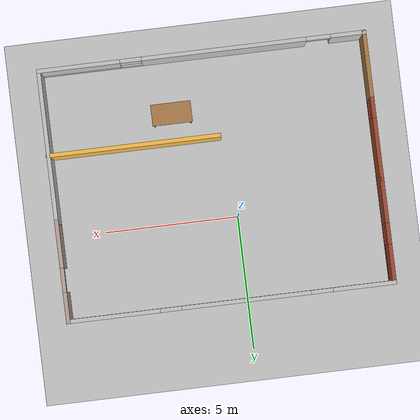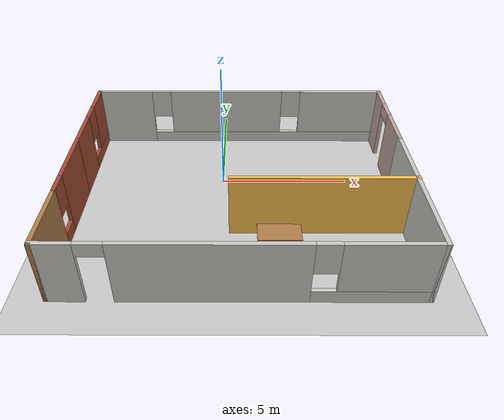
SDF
<sdf version="1.6">
 <world name="default">
  <model name="ground_plane">
   <static>1</static>
   <link name="link">
    <collision name="collision">
     <geometry><plane><normal>0 0 1</normal><size>100 100</size></plane></geometry>
     <surface><friction><ode><mu>100</mu><mu2>50</mu2></ode></friction></surface>
    </collision>
    <visual name="visual">
     <cast_shadows>0</cast_shadows>
     <geometry><plane><normal>0 0 1</normal><size>100 100</size></plane></geometry>
     <material>
      <script><uri>file://media/materials/scripts/gazebo.material</uri><name>Gazebo/Grey</name></script>
     </material>
    </visual>
   </link>
  </model>
  <model name="Ammar_world">
   <pose>0.65 -1.5 0 0 -0 0</pose>
   <link name="Wall_10">
    <pose>-6.06 2.725 0 0 -0 1.5708</pose>
    <visual name="Wall_10_Visual_0">
     <pose>-1.1425 0 1.25 0 -0 0</pose>
     <geometry><box><size>1.715 0.15 2.5</size></box></geometry>
     <material>
      <script><uri>file://media/materials/scripts/gazebo.material</uri><name>Gazebo/Bricks</name></script>
      <ambient>1 1 1 1</ambient>
     </material>
     <meta><layer>0</layer></meta>
    </visual>
    <collision name="Wall_10_Collision_0">
     <geometry><box><size>1.715 0.15 2.5</size></box></geometry>
     <pose>-1.1425 0 1.25 0 -0 0</pose>
    </collision>
    <visual name="Wall_10_Visual_1">
     <pose>0.8575 0 0.25 0 -0 0</pose>
     <geometry><box><size>2.285 0.15 0.5</size></box></geometry>
     <material>
      <script><uri>file://media/materials/scripts/gazebo.material</uri><name>Gazebo/Bricks</name></script>
      <ambient>1 1 1 1</ambient>
     </material>
     <meta><layer>0</layer></meta>
    </visual>
    <collision name="Wall_10_Collision_1">
     <geometry><box><size>2.285 0.15 0.5</size></box></geometry>
     <pose>0.8575 0 0.25 0 -0 0</pose>
    </collision>
    <visual name="Wall_10_Visual_2">
     <pose>1.2575 0 1.5 0 -0 0</pose>
     <geometry><box><size>1.485 0.15 2</size></box></geometry>
     <material>
      <script><uri>file://media/materials/scripts/gazebo.material</uri><name>Gazebo/Bricks</name></script>
      <ambient>1 1 1 1</ambient>
     </material>
     <meta><layer>0</layer></meta>
    </visual>
    <collision name="Wall_10_Collision_2">
     <geometry><box><size>1.485 0.15 2</size></box></geometry>
     <pose>1.2575 0 1.5 0 -0 0</pose>
    </collision>
    <visual name="Wall_10_Visual_3">
     <pose>0.115 0 1.9 0 -0 0</pose>
     <geometry><box><size>0.8 0.15 1.2</size></box></geometry>
     <material>
      <script><uri>file://media/materials/scripts/gazebo.material</uri><name>Gazebo/Bricks</name></script>
      <ambient>1 1 1 1</ambient>
     </material>
     <meta><layer>0</layer></meta>
    </visual>
    <collision name="Wall_10_Collision_3">
     <geometry><box><size>0.8 0.15 1.2</size></box></geometry>
     <pose>0.115 0 1.9 0 -0 0</pose>
    </collision>
   </link>
   <link name="Wall_11">
    <pose>-0.01 4.65 0 0 -0 0</pose>
    <visual name="Wall_11_Visual_0">
     <pose>-4.9475 0 1.25 0 -0 0</pose>
     <geometry><box><size>2.355 0.15 2.5</size></box></geometry>
     <material>
      <script><uri>file://media/materials/scripts/gazebo.material</uri><name>Gazebo/CeilingTiled</name></script>
      <ambient>0.760784 0.662745 0.627451 1</ambient>
     </material>
     <meta><layer>0</layer></meta>
    </visual>
    <collision name="Wall_11_Collision_0">
     <geometry><box><size>2.355 0.15 2.5</size></box></geometry>
     <pose>-4.9475 0 1.25 0 -0 0</pose>
    </collision>
    <visual name="Wall_11_Visual_1">
     <pose>1.1775 0 0.25 0 -0 0</pose>
     <geometry><box><size>9.895 0.15 0.5</size></box></geometry>
     <material>
      <script><uri>file://media/materials/scripts/gazebo.material</uri><name>Gazebo/CeilingTiled</name></script>
      <ambient>0.760784 0.662745 0.627451 1</ambient>
     </material>
     <meta><layer>0</layer></meta>
    </visual>
    <collision name="Wall_11_Collision_1">
     <geometry><box><size>9.895 0.15 0.5</size></box></geometry>
     <pose>1.1775 0 0.25 0 -0 0</pose>
    </collision>
    <visual name="Wall_11_Visual_2">
     <pose>-0.565 0 1.5 0 -0 0</pose>
     <geometry><box><size>4.81 0.15 2</size></box></geometry>
     <material>
      <script><uri>file://media/materials/scripts/gazebo.material</uri><name>Gazebo/CeilingTiled</name></script>
      <ambient>0.760784 0.662745 0.627451 1</ambient>
     </material>
     <meta><layer>0</layer></meta>
    </visual>
    <collision name="Wall_11_Collision_2">
     <geometry><box><size>4.81 0.15 2</size></box></geometry>
     <pose>-0.565 0 1.5 0 -0 0</pose>
    </collision>
    <visual name="Wall_11_Visual_3">
     <pose>4.3825 0 1.5 0 -0 0</pose>
     <geometry><box><size>3.485 0.15 2</size></box></geometry>
     <material>
      <script><uri>file://media/materials/scripts/gazebo.material</uri><name>Gazebo/CeilingTiled</name></script>
      <ambient>0.760784 0.662745 0.627451 1</ambient>
     </material>
     <meta><layer>0</layer></meta>
    </visual>
    <collision name="Wall_11_Collision_3">
     <geometry><box><size>3.485 0.15 2</size></box></geometry>
     <pose>4.3825 0 1.5 0 -0 0</pose>
    </collision>
    <visual name="Wall_11_Visual_4">
     <pose>-3.37 0 1.9 0 -0 0</pose>
     <geometry><box><size>0.8 0.15 1.2</size></box></geometry>
     <material>
      <script><uri>file://media/materials/scripts/gazebo.material</uri><name>Gazebo/CeilingTiled</name></script>
      <ambient>0.760784 0.662745 0.627451 1</ambient>
     </material>
     <meta><layer>0</layer></meta>
    </visual>
    <collision name="Wall_11_Collision_4">
     <geometry><box><size>0.8 0.15 1.2</size></box></geometry>
     <pose>-3.37 0 1.9 0 -0 0</pose>
    </collision>
    <visual name="Wall_11_Visual_5">
     <pose>2.24 0 1.9 0 -0 0</pose>
     <geometry><box><size>0.8 0.15 1.2</size></box></geometry>
     <material>
      <script><uri>file://media/materials/scripts/gazebo.material</uri><name>Gazebo/CeilingTiled</name></script>
      <ambient>0.760784 0.662745 0.627451 1</ambient>
     </material>
     <meta><layer>0</layer></meta>
    </visual>
    <collision name="Wall_11_Collision_5">
     <geometry><box><size>0.8 0.15 1.2</size></box></geometry>
     <pose>2.24 0 1.9 0 -0 0</pose>
    </collision>
   </link>
   <link name="Wall_12">
    <pose>6.04 2.8 0 0 0 -1.5708</pose>
    <visual name="Wall_12_Visual_0">
     <pose>-1.3425 0 1.25 0 -0 0</pose>
     <geometry><box><size>1.165 0.15 2.5</size></box></geometry>
     <material>
      <script><uri>file://media/materials/scripts/gazebo.material</uri><name>Gazebo/Grey</name></script>
      <ambient>0.760784 0.662745 0.627451 1</ambient>
     </material>
     <meta><layer>0</layer></meta>
    </visual>
    <collision name="Wall_12_Collision_0">
     <geometry><box><size>1.165 0.15 2.5</size></box></geometry>
     <pose>-1.3425 0 1.25 0 -0 0</pose>
    </collision>
    <visual name="Wall_12_Visual_1">
     <pose>1.0325 0 1.25 0 -0 0</pose>
     <geometry><box><size>1.785 0.15 2.5</size></box></geometry>
     <material>
      <script><uri>file://media/materials/scripts/gazebo.material</uri><name>Gazebo/Grey</name></script>
      <ambient>0.760784 0.662745 0.627451 1</ambient>
     </material>
     <meta><layer>0</layer></meta>
    </visual>
    <collision name="Wall_12_Collision_1">
     <geometry><box><size>1.785 0.15 2.5</size></box></geometry>
     <pose>1.0325 0 1.25 0 -0 0</pose>
    </collision>
    <visual name="Wall_12_Visual_2">
     <pose>-0.31 0 2.25 0 -0 0</pose>
     <geometry><box><size>0.9 0.15 0.5</size></box></geometry>
     <material>
      <script><uri>file://media/materials/scripts/gazebo.material</uri><name>Gazebo/Grey</name></script>
      <ambient>0.760784 0.662745 0.627451 1</ambient>
     </material>
     <meta><layer>0</layer></meta>
    </visual>
    <collision name="Wall_12_Collision_2">
     <geometry><box><size>0.9 0.15 0.5</size></box></geometry>
     <pose>-0.31 0 2.25 0 -0 0</pose>
    </collision>
   </link>
   <link name="Wall_17">
    <collision name="Wall_17_Collision">
     <geometry><box><size>6.5 0.15 2.5</size></box></geometry>
     <pose>0 0 1.25 0 -0 0</pose>
    </collision>
    <visual name="Wall_17_Visual">
     <pose>0 0 1.25 0 -0 0</pose>
     <geometry><box><size>6.5 0.15 2.5</size></box></geometry>
     <material>
      <script><uri>file://media/materials/scripts/gazebo.material</uri><name>Gazebo/Grey</name></script>
      <ambient>1 0.764706 0.305882 1</ambient>
     </material>
     <meta><layer>0</layer></meta>
    </visual>
    <pose>2.885 -1.51 0 0 -0 3.14159</pose>
   </link>
   <link name="Wall_2">
    <pose>-6.06 -0.75 0 0 0 -1.5708</pose>
    <visual name="Wall_2_Visual_0">
     <pose>-0.4625 0 1.25 0 -0 0</pose>
     <geometry><box><size>2.325 0.15 2.5</size></box></geometry>
     <material>
      <script><uri>file://media/materials/scripts/gazebo.material</uri><name>Gazebo/Bricks</name></script>
      <ambient>1 1 1 1</ambient>
     </material>
     <meta><layer>0</layer></meta>
    </visual>
    <collision name="Wall_2_Collision_0">
     <geometry><box><size>2.325 0.15 2.5</size></box></geometry>
     <pose>-0.4625 0 1.25 0 -0 0</pose>
    </collision>
    <visual name="Wall_2_Visual_1">
     <pose>1.1625 0 0.25 0 -0 0</pose>
     <geometry><box><size>0.925 0.15 0.5</size></box></geometry>
     <material>
      <script><uri>file://media/materials/scripts/gazebo.material</uri><name>Gazebo/Bricks</name></script>
      <ambient>1 1 1 1</ambient>
     </material>
     <meta><layer>0</layer></meta>
    </visual>
    <collision name="Wall_2_Collision_1">
     <geometry><box><size>0.925 0.15 0.5</size></box></geometry>
     <pose>1.1625 0 0.25 0 -0 0</pose>
    </collision>
    <visual name="Wall_2_Visual_2">
     <pose>1.5625 0 1.5 0 -0 0</pose>
     <geometry><box><size>0.125 0.15 2</size></box></geometry>
     <material>
      <script><uri>file://media/materials/scripts/gazebo.material</uri><name>Gazebo/Bricks</name></script>
      <ambient>1 1 1 1</ambient>
     </material>
     <meta><layer>0</layer></meta>
    </visual>
    <collision name="Wall_2_Collision_2">
     <geometry><box><size>0.125 0.15 2</size></box></geometry>
     <pose>1.5625 0 1.5 0 -0 0</pose>
    </collision>
    <visual name="Wall_2_Visual_3">
     <pose>1.1 0 1.9 0 -0 0</pose>
     <geometry><box><size>0.8 0.15 1.2</size></box></geometry>
     <material>
      <script><uri>file://media/materials/scripts/gazebo.material</uri><name>Gazebo/Bricks</name></script>
      <ambient>1 1 1 1</ambient>
     </material>
     <meta><layer>0</layer></meta>
    </visual>
    <collision name="Wall_2_Collision_3">
     <geometry><box><size>0.8 0.15 1.2</size></box></geometry>
     <pose>1.1 0 1.9 0 -0 0</pose>
    </collision>
   </link>
   <link name="Wall_4">
    <collision name="Wall_4_Collision">
     <geometry><box><size>2.5 0.15 2.5</size></box></geometry>
     <pose>0 0 1.25 0 -0 0</pose>
    </collision>
    <visual name="Wall_4_Visual">
     <pose>0 0 1.25 0 -0 0</pose>
     <geometry><box><size>2.5 0.15 2.5</size></box></geometry>
     <material>
      <script><uri>file://media/materials/scripts/gazebo.material</uri><name>Gazebo/Wood</name></script>
      <ambient>1 1 1 1</ambient>
     </material>
     <meta><layer>0</layer></meta>
    </visual>
    <pose>-6.06 -3.475 0 0 0 -1.5708</pose>
   </link>
   <link name="Wall_5">
    <pose>-0.01 -4.65 0 0 -0 0</pose>
    <visual name="Wall_5_Visual_0">
     <pose>-5.4625 0 1.25 0 -0 0</pose>
     <geometry><box><size>1.325 0.15 2.5</size></box></geometry>
     <material>
      <script><uri>file://media/materials/scripts/gazebo.material</uri><name>Gazebo/CeilingTiled</name></script>
      <ambient>0.435294 0.796078 0.67451 1</ambient>
     </material>
     <meta><layer>0</layer></meta>
    </visual>
    <collision name="Wall_5_Collision_0">
     <geometry><box><size>1.325 0.15 2.5</size></box></geometry>
     <pose>-5.4625 0 1.25 0 -0 0</pose>
    </collision>
    <visual name="Wall_5_Visual_1">
     <pose>-0.835 0 1.25 0 -0 0</pose>
     <geometry><box><size>6.13 0.15 2.5</size></box></geometry>
     <material>
      <script><uri>file://media/materials/scripts/gazebo.material</uri><name>Gazebo/CeilingTiled</name></script>
      <ambient>0.435294 0.796078 0.67451 1</ambient>
     </material>
     <meta><layer>0</layer></meta>
    </visual>
    <collision name="Wall_5_Collision_1">
     <geometry><box><size>6.13 0.15 2.5</size></box></geometry>
     <pose>-0.835 0 1.25 0 -0 0</pose>
    </collision>
    <visual name="Wall_5_Visual_2">
     <pose>4.1775 0 0.25 0 -0 0</pose>
     <geometry><box><size>3.895 0.15 0.5</size></box></geometry>
     <material>
      <script><uri>file://media/materials/scripts/gazebo.material</uri><name>Gazebo/CeilingTiled</name></script>
      <ambient>0.435294 0.796078 0.67451 1</ambient>
     </material>
     <meta><layer>0</layer></meta>
    </visual>
    <collision name="Wall_5_Collision_2">
     <geometry><box><size>3.895 0.15 0.5</size></box></geometry>
     <pose>4.1775 0 0.25 0 -0 0</pose>
    </collision>
    <visual name="Wall_5_Visual_3">
     <pose>4.5775 0 1.5 0 -0 0</pose>
     <geometry><box><size>3.095 0.15 2</size></box></geometry>
     <material>
      <script><uri>file://media/materials/scripts/gazebo.material</uri><name>Gazebo/CeilingTiled</name></script>
      <ambient>0.435294 0.796078 0.67451 1</ambient>
     </material>
     <meta><layer>0</layer></meta>
    </visual>
    <collision name="Wall_5_Collision_3">
     <geometry><box><size>3.095 0.15 2</size></box></geometry>
     <pose>4.5775 0 1.5 0 -0 0</pose>
    </collision>
    <visual name="Wall_5_Visual_4">
     <pose>2.63 0 1.9 0 -0 0</pose>
     <geometry><box><size>0.8 0.15 1.2</size></box></geometry>
     <material>
      <script><uri>file://media/materials/scripts/gazebo.material</uri><name>Gazebo/CeilingTiled</name></script>
      <ambient>0.435294 0.796078 0.67451 1</ambient>
     </material>
     <meta><layer>0</layer></meta>
    </visual>
    <collision name="Wall_5_Collision_4">
     <geometry><box><size>0.8 0.15 1.2</size></box></geometry>
     <pose>2.63 0 1.9 0 -0 0</pose>
    </collision>
    <visual name="Wall_5_Visual_5">
     <pose>-4.35 0 2.25 0 -0 0</pose>
     <geometry><box><size>0.9 0.15 0.5</size></box></geometry>
     <material>
      <script><uri>file://media/materials/scripts/gazebo.material</uri><name>Gazebo/CeilingTiled</name></script>
      <ambient>0.435294 0.796078 0.67451 1</ambient>
     </material>
     <meta><layer>0</layer></meta>
    </visual>
    <collision name="Wall_5_Collision_5">
     <geometry><box><size>0.9 0.15 0.5</size></box></geometry>
     <pose>-4.35 0 2.25 0 -0 0</pose>
    </collision>
   </link>
   <link name="Wall_6">
    <collision name="Wall_6_Collision">
     <geometry><box><size>5.75 0.15 2.5</size></box></geometry>
     <pose>0 0 1.25 0 -0 0</pose>
    </collision>
    <visual name="Wall_6_Visual">
     <pose>0 0 1.25 0 -0 0</pose>
     <geometry><box><size>5.75 0.15 2.5</size></box></geometry>
     <material>
      <script><uri>file://media/materials/scripts/gazebo.material</uri><name>Gazebo/CeilingTiled</name></script>
      <ambient>0.435294 0.796078 0.67451 1</ambient>
     </material>
     <meta><layer>0</layer></meta>
    </visual>
    <pose>6.04 -1.85 0 0 -0 1.5708</pose>
   </link>
   <static>1</static>
  </model>
  <model name="table_0">
   <static>1</static>
   <link name="link">
    <collision name="surface">
     <pose>0 0 1 0 -0 0</pose>
     <geometry><box><size>1.5 0.8 0.03</size></box></geometry>
     <surface><friction><ode><mu>0.6</mu><mu2>0.6</mu2></ode></friction></surface>
    </collision>
    <visual name="visual1">
     <pose>0 0 1 0 -0 0</pose>
     <geometry><box><size>1.5 0.8 0.03</size></box></geometry>
     <material>
      <script><uri>file://media/materials/scripts/gazebo.material</uri><name>Gazebo/Wood</name></script>
     </material>
    </visual>
    <collision name="front_left_leg">
     <pose>0.68 0.38 0.5 0 -0 0</pose>
     <geometry><cylinder><radius>0.02</radius><length>1</length></cylinder></geometry>
    </collision>
    <visual name="front_left_leg">
     <pose>0.68 0.38 0.5 0 -0 0</pose>
     <geometry><cylinder><radius>0.02</radius><length>1</length></cylinder></geometry>
     <material>
      <script><uri>file://media/materials/scripts/gazebo.material</uri><name>Gazebo/Grey</name></script>
     </material>
    </visual>
    <collision name="front_right_leg">
     <pose>0.68 -0.38 0.5 0 -0 0</pose>
     <geometry><cylinder><radius>0.02</radius><length>1</length></cylinder></geometry>
    </collision>
    <visual name="front_right_leg">
     <pose>0.68 -0.38 0.5 0 -0 0</pose>
     <geometry><cylinder><radius>0.02</radius><length>1</length></cylinder></geometry>
     <material>
      <script><uri>file://media/materials/scripts/gazebo.material</uri><name>Gazebo/Grey</name></script>
     </material>
    </visual>
    <collision name="back_right_leg">
     <pose>-0.68 -0.38 0.5 0 -0 0</pose>
     <geometry><cylinder><radius>0.02</radius><length>1</length></cylinder></geometry>
    </collision>
    <visual name="back_right_leg">
     <pose>-0.68 -0.38 0.5 0 -0 0</pose>
     <geometry><cylinder><radius>0.02</radius><length>1</length></cylinder></geometry>
     <material>
      <script><uri>file://media/materials/scripts/gazebo.material</uri><name>Gazebo/Grey</name></script>
     </material>
    </visual>
    <collision name="back_left_leg">
     <pose>-0.68 0.38 0.5 0 -0 0</pose>
     <geometry><cylinder><radius>0.02</radius><length>1</length></cylinder></geometry>
    </collision>
    <visual name="back_left_leg">
     <pose>-0.68 0.38 0.5 0 -0 0</pose>
     <geometry><cylinder><radius>0.02</radius><length>1</length></cylinder></geometry>
     <material>
      <script><uri>file://media/materials/scripts/gazebo.material</uri><name>Gazebo/Grey</name></script>
     </material>
    </visual>
   </link>
   <pose>2.011 -4.10578 0 0 -0 0</pose>
  </model>
 </world>
</sdf>
